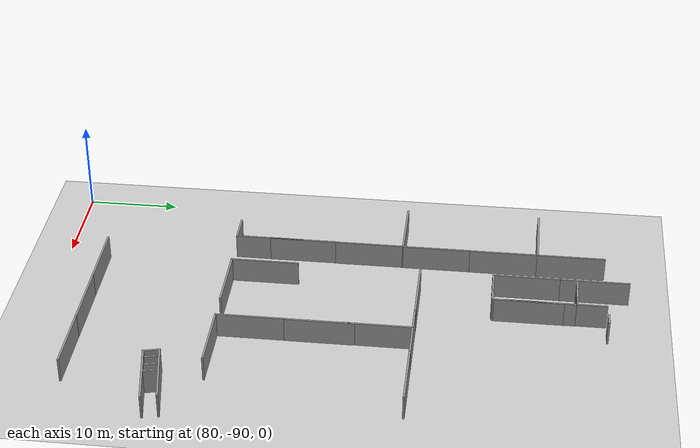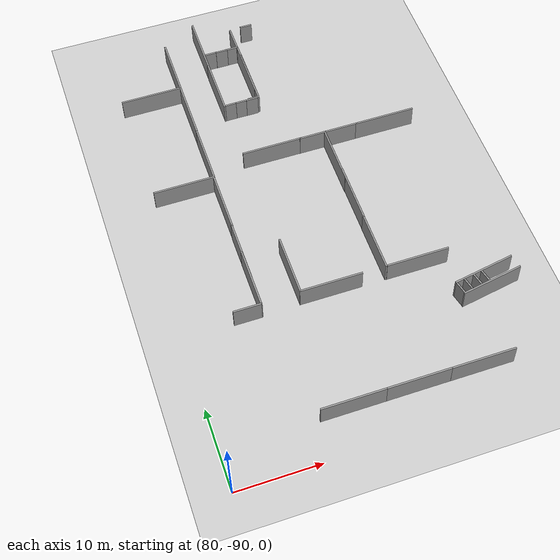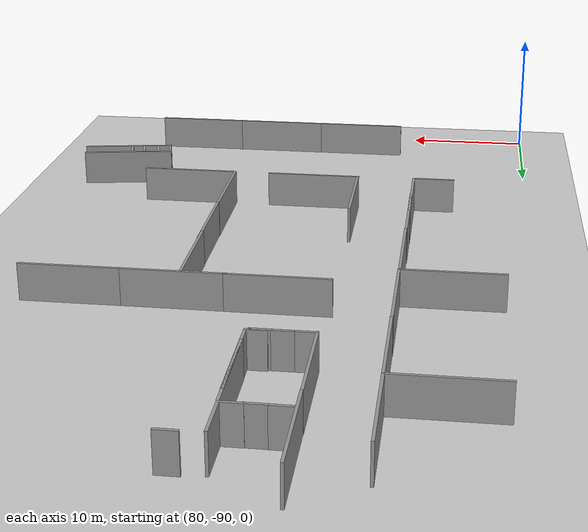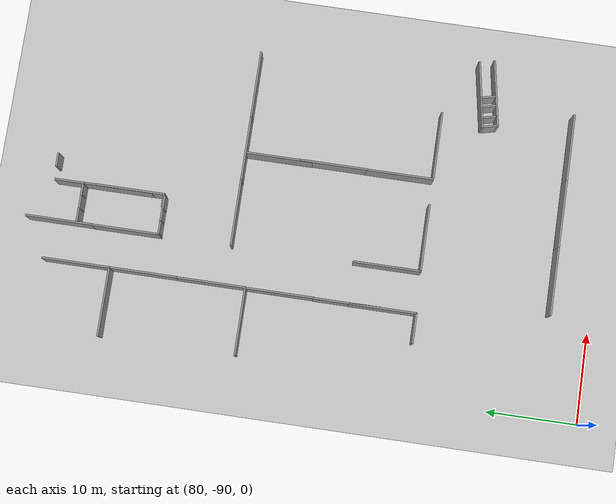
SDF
<sdf version="1.7">
 <world name="default">
  <model name="ground_plane">
   <static>1</static>
   <link name="link">
    <collision name="collision">
     <geometry><plane><normal>0 0 1</normal><size>100 100</size></plane></geometry>
     <surface>
      <contact><collide_bitmask>65535</collide_bitmask></contact>
      <friction><ode><mu>100</mu><mu2>50</mu2></ode></friction>
     </surface>
    </collision>
    <visual name="visual">
     <cast_shadows>0</cast_shadows>
     <geometry><plane><normal>0 0 1</normal><size>100 100</size></plane></geometry>
     <material>
      <script><uri>file://media/materials/scripts/gazebo.material</uri><name>Gazebo/Grey</name></script>
     </material>
    </visual>
   </link>
  </model>
  <model name="grey_wall_clone_1_clone_2_clone_clone_clone_clone_clone_clone_clone_clone_clone_3_clone_0_clone_1_clone_clone_0">
   <static>1</static>
   <link name="link">
    <pose>0 0 1.4 0 -0 0</pose>
    <collision name="collision"><geometry><box><size>7.5 0.2 2.8</size></box></geometry></collision>
    <visual name="visual">
     <cast_shadows>0</cast_shadows>
     <geometry><box><size>7.5 0.2 2.8</size></box></geometry>
     <material>
      <script>
       <uri>model://grey_wall/materials/scripts</uri>
       <uri>model://grey_wall/materials/textures</uri>
       <name>vrc/grey_wall</name>
      </script>
     </material>
    </visual>
   </link>
   <pose>85.6353 -37.3025 0 0 -0 0</pose>
  </model>
  <model name="grey_wall_clone_2_clone_clone_clone_1_clone_clone_0_clone_1_clone_clone_clone_1_clone_1_clone_clone">
   <static>1</static>
   <link name="link">
    <pose>0 0 1.4 0 -0 0</pose>
    <collision name="collision"><geometry><box><size>7.5 0.2 2.8</size></box></geometry></collision>
    <visual name="visual">
     <cast_shadows>0</cast_shadows>
     <geometry><box><size>7.5 0.2 2.8</size></box></geometry>
     <material>
      <script>
       <uri>model://grey_wall/materials/scripts</uri>
       <uri>model://grey_wall/materials/textures</uri>
       <name>vrc/grey_wall</name>
      </script>
     </material>
    </visual>
   </link>
   <pose>89.4328 -33.6148 0 0 0 -1.5708</pose>
  </model>
  <model name="grey_wall_clone_2_clone_clone_clone_1_clone_clone_0_clone_1_clone_clone_clone_1_clone_1_clone_clone_clone">
   <static>1</static>
   <link name="link">
    <pose>0 0 1.4 0 -0 0</pose>
    <collision name="collision"><geometry><box><size>7.5 0.2 2.8</size></box></geometry></collision>
    <visual name="visual">
     <cast_shadows>0</cast_shadows>
     <geometry><box><size>7.5 0.2 2.8</size></box></geometry>
     <material>
      <script>
       <uri>model://grey_wall/materials/scripts</uri>
       <uri>model://grey_wall/materials/textures</uri>
       <name>vrc/grey_wall</name>
      </script>
     </material>
    </visual>
   </link>
   <pose>89.4286 -41.0462 0 0 0 -1.5708</pose>
  </model>
  <model name="grey_wall_clone_2_clone_clone_clone_1_clone_clone_0_clone_1_clone_clone_clone_1_clone_1_clone_clone_clone_0">
   <static>1</static>
   <link name="link">
    <pose>0 0 1.4 0 -0 0</pose>
    <collision name="collision"><geometry><box><size>7.5 0.2 2.8</size></box></geometry></collision>
    <visual name="visual">
     <cast_shadows>0</cast_shadows>
     <geometry><box><size>7.5 0.2 2.8</size></box></geometry>
     <material>
      <script>
       <uri>model://grey_wall/materials/scripts</uri>
       <uri>model://grey_wall/materials/textures</uri>
       <name>vrc/grey_wall</name>
      </script>
     </material>
    </visual>
   </link>
   <pose>89.406 -48.4694 0 0 0 -1.5708</pose>
  </model>
  <model name="grey_wall_clone_1_clone_2_clone_clone_clone_clone_clone_clone_clone_clone_clone_3_clone_0_clone_1_clone_clone_0_clone_0">
   <static>1</static>
   <link name="link">
    <pose>0 0 1.4 0 -0 0</pose>
    <collision name="collision"><geometry><box><size>7.5 0.2 2.8</size></box></geometry></collision>
    <visual name="visual">
     <cast_shadows>0</cast_shadows>
     <geometry><box><size>7.5 0.2 2.8</size></box></geometry>
     <material>
      <script>
       <uri>model://grey_wall/materials/scripts</uri>
       <uri>model://grey_wall/materials/textures</uri>
       <name>vrc/grey_wall</name>
      </script>
     </material>
    </visual>
   </link>
   <pose>85.7338 -52.2347 0 0 -0 0</pose>
  </model>
  <model name="grey_wall_clone_2_clone_clone_clone_1_clone_clone_0_clone_1_clone_clone_clone_clone_clone_2_clone_clone">
   <static>1</static>
   <link name="link">
    <pose>0 0 1.4 0 -0 0</pose>
    <collision name="collision"><geometry><box><size>7.5 0.2 2.8</size></box></geometry></collision>
    <visual name="visual">
     <cast_shadows>0</cast_shadows>
     <geometry><box><size>7.5 0.2 2.8</size></box></geometry>
     <material>
      <script>
       <uri>model://grey_wall/materials/scripts</uri>
       <uri>model://grey_wall/materials/textures</uri>
       <name>vrc/grey_wall</name>
      </script>
     </material>
    </visual>
   </link>
   <pose>89.3617 -56.0477 0 0 0 -1.5708</pose>
  </model>
  <model name="grey_wall_clone_2_clone_clone_clone_1_clone_clone_0_clone_1_clone_clone_clone_clone_clone_2_clone_clone_3">
   <static>1</static>
   <link name="link">
    <pose>0 0 1.4 0 -0 0</pose>
    <collision name="collision"><geometry><box><size>7.5 0.2 2.8</size></box></geometry></collision>
    <visual name="visual">
     <cast_shadows>0</cast_shadows>
     <geometry><box><size>7.5 0.2 2.8</size></box></geometry>
     <material>
      <script>
       <uri>model://grey_wall/materials/scripts</uri>
       <uri>model://grey_wall/materials/textures</uri>
       <name>vrc/grey_wall</name>
      </script>
     </material>
    </visual>
   </link>
   <pose>89.3232 -63.4105 0 0 0 -1.5708</pose>
  </model>
  <model name="grey_wall_clone_2_clone_clone_clone_1_clone_clone_0_clone_1_clone_clone_clone_clone_clone_2_clone_clone_4">
   <static>1</static>
   <link name="link">
    <pose>0 0 1.4 0 -0 0</pose>
    <collision name="collision"><geometry><box><size>7.5 0.2 2.8</size></box></geometry></collision>
    <visual name="visual">
     <cast_shadows>0</cast_shadows>
     <geometry><box><size>7.5 0.2 2.8</size></box></geometry>
     <material>
      <script>
       <uri>model://grey_wall/materials/scripts</uri>
       <uri>model://grey_wall/materials/textures</uri>
       <name>vrc/grey_wall</name>
      </script>
     </material>
    </visual>
   </link>
   <pose>89.3032 -67.2949 0 0 0 -1.5708</pose>
  </model>
  <model name="fixed_half_clone_5_clone_1_clone_clone">
   <link name="link">
    <pose>0 0 1.4 0 -0 0</pose>
    <inertial>
     <mass>1</mass>
     <inertia><ixx>1</ixx><ixy>0</ixy><ixz>0</ixz><iyy>1</iyy><iyz>0</iyz><izz>1</izz></inertia>
    </inertial>
    <visual name="visual">
     <cast_shadows>0</cast_shadows>
     <geometry><box><size>3.3 0.2 2.8</size></box></geometry>
     <material>
      <script>
       <uri>model://grey_wall/materials/scripts</uri>
       <uri>model://grey_wall/materials/textures</uri>
       <name>vrc/grey_wall</name>
      </script>
      <shader type="pixel"><normal_map>__default__</normal_map></shader>
      <ambient>1 1 1 1</ambient>
      <diffuse>1 1 1 1</diffuse>
      <specular>0 0 0 1</specular>
      <emissive>0 0 0 1</emissive>
     </material>
    </visual>
    <collision name="collision">
     <geometry><box><size>3.3 0.2 2.8</size></box></geometry>
     <surface>
      <friction>
       <ode><mu>1</mu><mu2>1</mu2><fdir1>0 0 0</fdir1><slip1>0</slip1><slip2>0</slip2></ode>
       <torsional>
        <coefficient>1</coefficient>
        <patch_radius>0</patch_radius>
        <surface_radius>0</surface_radius>
        <use_patch_radius>1</use_patch_radius>
        <ode><slip>0</slip></ode>
       </torsional>
      </friction>
      <bounce><restitution_coefficient>0</restitution_coefficient><threshold>1e+06</threshold></bounce>
      <contact>
       <collide_without_contact>0</collide_without_contact>
       <collide_without_contact_bitmask>1</collide_without_contact_bitmask>
       <collide_bitmask>1</collide_bitmask>
       <ode>
        <soft_cfm>0</soft_cfm>
        <soft_erp>0.2</soft_erp>
        <kp>1e+13</kp>
        <kd>1</kd>
        <max_vel>0.01</max_vel>
        <min_depth>0</min_depth>
       </ode>
       <bullet>
        <split_impulse>1</split_impulse>
        <split_impulse_penetration_threshold>-0.01</split_impulse_penetration_threshold>
        <soft_cfm>0</soft_cfm>
        <soft_erp>0.2</soft_erp>
        <kp>1e+13</kp>
        <kd>1</kd>
       </bullet>
      </contact>
     </surface>
    </collision>
   </link>
   <static>1</static>
   <pose>87.6669 -70.9603 0 0 -0 3.14159</pose>
  </model>
  <model name="grey_wall_clone_2_clone_clone_clone_1_clone_clone_0_clone_1_clone_clone_clone_1_clone_0_clone_2_clone_1">
   <static>1</static>
   <link name="link">
    <pose>0 0 1.4 0 -0 0</pose>
    <collision name="collision"><geometry><box><size>7.5 0.2 2.8</size></box></geometry></collision>
    <visual name="visual">
     <cast_shadows>0</cast_shadows>
     <geometry><box><size>7.5 0.2 2.8</size></box></geometry>
     <material>
      <script>
       <uri>model://grey_wall/materials/scripts</uri>
       <uri>model://grey_wall/materials/textures</uri>
       <name>vrc/grey_wall</name>
      </script>
     </material>
    </visual>
   </link>
   <pose>93.8014 -31.0444 0 0 0 -1.5708</pose>
  </model>
  <model name="grey_wall_clone_2_clone_clone_clone_1_clone_clone_0_clone_1_clone_clone_clone_1_clone_0_clone_2_clone_2">
   <static>1</static>
   <link name="link">
    <pose>0 0 1.4 0 -0 0</pose>
    <collision name="collision"><geometry><box><size>7.5 0.2 2.8</size></box></geometry></collision>
    <visual name="visual">
     <cast_shadows>0</cast_shadows>
     <geometry><box><size>7.5 0.2 2.8</size></box></geometry>
     <material>
      <script>
       <uri>model://grey_wall/materials/scripts</uri>
       <uri>model://grey_wall/materials/textures</uri>
       <name>vrc/grey_wall</name>
      </script>
     </material>
    </visual>
   </link>
   <pose>93.78 -38.3773 0 0 0 -1.5708</pose>
  </model>
  <model name="half_wall_clone_0_clone_clone_clone_9_clone_1_clone_clone_1">
   <link name="link">
    <pose>0 0 1.4 0 -0 0</pose>
    <inertial>
     <mass>1</mass>
     <inertia><ixx>1</ixx><ixy>0</ixy><ixz>0</ixz><iyy>1</iyy><iyz>0</iyz><izz>1</izz></inertia>
    </inertial>
    <visual name="visual">
     <cast_shadows>0</cast_shadows>
     <geometry><box><size>1.5 0.2 2.8</size></box></geometry>
     <material>
      <script>
       <uri>model://grey_wall/materials/scripts</uri>
       <uri>model://grey_wall/materials/textures</uri>
       <name>vrc/grey_wall</name>
      </script>
      <shader type="pixel"><normal_map>__default__</normal_map></shader>
      <ambient>1 1 1 1</ambient>
      <diffuse>1 1 1 1</diffuse>
      <specular>0 0 0 1</specular>
      <emissive>0 0 0 1</emissive>
     </material>
    </visual>
    <collision name="collision">
     <geometry><box><size>1.5 0.2 2.8</size></box></geometry>
     <surface>
      <friction>
       <ode><mu>1</mu><mu2>1</mu2><fdir1>0 0 0</fdir1><slip1>0</slip1><slip2>0</slip2></ode>
       <torsional>
        <coefficient>1</coefficient>
        <patch_radius>0</patch_radius>
        <surface_radius>0</surface_radius>
        <use_patch_radius>1</use_patch_radius>
        <ode><slip>0</slip></ode>
       </torsional>
      </friction>
      <bounce><restitution_coefficient>0</restitution_coefficient><threshold>1e+06</threshold></bounce>
      <contact>
       <collide_without_contact>0</collide_without_contact>
       <collide_without_contact_bitmask>1</collide_without_contact_bitmask>
       <collide_bitmask>1</collide_bitmask>
       <ode>
        <soft_cfm>0</soft_cfm>
        <soft_erp>0.2</soft_erp>
        <kp>1e+13</kp>
        <kd>1</kd>
        <max_vel>0.01</max_vel>
        <min_depth>0</min_depth>
       </ode>
       <bullet>
        <split_impulse>1</split_impulse>
        <split_impulse_penetration_threshold>-0.01</split_impulse_penetration_threshold>
        <soft_cfm>0</soft_cfm>
        <soft_erp>0.2</soft_erp>
        <kp>1e+13</kp>
        <kd>1</kd>
       </bullet>
      </contact>
     </surface>
    </collision>
   </link>
   <static>1</static>
   <pose>100.371 -29.6779 0 0 -0 3.14159</pose>
  </model>
  <model name="fixed_half_clone_16_clone_clone_clone_0_clone_4_clone_1_clone">
   <link name="link">
    <pose>0 0 1.4 0 -0 0</pose>
    <inertial>
     <mass>1</mass>
     <inertia><ixx>1</ixx><ixy>0</ixy><ixz>0</ixz><iyy>1</iyy><iyz>0</iyz><izz>1</izz></inertia>
    </inertial>
    <visual name="visual">
     <cast_shadows>0</cast_shadows>
     <geometry><box><size>3.3 0.2 2.8</size></box></geometry>
     <material>
      <script>
       <uri>model://grey_wall/materials/scripts</uri>
       <uri>model://grey_wall/materials/textures</uri>
       <name>vrc/grey_wall</name>
      </script>
      <shader type="pixel"><normal_map>__default__</normal_map></shader>
      <ambient>1 1 1 1</ambient>
      <diffuse>1 1 1 1</diffuse>
      <specular>0 0 0 1</specular>
      <emissive>0 0 0 1</emissive>
     </material>
    </visual>
    <collision name="collision">
     <geometry><box><size>3.3 0.2 2.8</size></box></geometry>
     <surface>
      <friction>
       <ode><mu>1</mu><mu2>1</mu2><fdir1>0 0 0</fdir1><slip1>0</slip1><slip2>0</slip2></ode>
       <torsional>
        <coefficient>1</coefficient>
        <patch_radius>0</patch_radius>
        <surface_radius>0</surface_radius>
        <use_patch_radius>1</use_patch_radius>
        <ode><slip>0</slip></ode>
       </torsional>
      </friction>
      <bounce><restitution_coefficient>0</restitution_coefficient><threshold>1e+06</threshold></bounce>
      <contact>
       <collide_without_contact>0</collide_without_contact>
       <collide_without_contact_bitmask>1</collide_without_contact_bitmask>
       <collide_bitmask>1</collide_bitmask>
       <ode>
        <soft_cfm>0</soft_cfm>
        <soft_erp>0.2</soft_erp>
        <kp>1e+13</kp>
        <kd>1</kd>
        <max_vel>0.01</max_vel>
        <min_depth>0</min_depth>
       </ode>
       <bullet>
        <split_impulse>1</split_impulse>
        <split_impulse_penetration_threshold>-0.01</split_impulse_penetration_threshold>
        <soft_cfm>0</soft_cfm>
        <soft_erp>0.2</soft_erp>
        <kp>1e+13</kp>
        <kd>1</kd>
       </bullet>
      </contact>
     </surface>
    </collision>
   </link>
   <static>1</static>
   <pose>98.2039 -31.4104 0 0 0 -1.5708</pose>
  </model>
  <model name="half_wall_clone_0_clone_clone_clone_9_clone_1_clone_clone_2_clone">
   <link name="link">
    <pose>0 0 1.4 0 -0 0</pose>
    <inertial>
     <mass>1</mass>
     <inertia><ixx>1</ixx><ixy>0</ixy><ixz>0</ixz><iyy>1</iyy><iyz>0</iyz><izz>1</izz></inertia>
    </inertial>
    <visual name="visual">
     <cast_shadows>0</cast_shadows>
     <geometry><box><size>1.5 0.2 2.8</size></box></geometry>
     <material>
      <script>
       <uri>model://grey_wall/materials/scripts</uri>
       <uri>model://grey_wall/materials/textures</uri>
       <name>vrc/grey_wall</name>
      </script>
      <shader type="pixel"><normal_map>__default__</normal_map></shader>
      <ambient>1 1 1 1</ambient>
      <diffuse>1 1 1 1</diffuse>
      <specular>0 0 0 1</specular>
      <emissive>0 0 0 1</emissive>
     </material>
    </visual>
    <collision name="collision">
     <geometry><box><size>1.5 0.2 2.8</size></box></geometry>
     <surface>
      <friction>
       <ode><mu>1</mu><mu2>1</mu2><fdir1>0 0 0</fdir1><slip1>0</slip1><slip2>0</slip2></ode>
       <torsional>
        <coefficient>1</coefficient>
        <patch_radius>0</patch_radius>
        <surface_radius>0</surface_radius>
        <use_patch_radius>1</use_patch_radius>
        <ode><slip>0</slip></ode>
       </torsional>
      </friction>
      <bounce><restitution_coefficient>0</restitution_coefficient><threshold>1e+06</threshold></bounce>
      <contact>
       <collide_without_contact>0</collide_without_contact>
       <collide_without_contact_bitmask>1</collide_without_contact_bitmask>
       <collide_bitmask>1</collide_bitmask>
       <ode>
        <soft_cfm>0</soft_cfm>
        <soft_erp>0.2</soft_erp>
        <kp>1e+13</kp>
        <kd>1</kd>
        <max_vel>0.01</max_vel>
        <min_depth>0</min_depth>
       </ode>
       <bullet>
        <split_impulse>1</split_impulse>
        <split_impulse_penetration_threshold>-0.01</split_impulse_penetration_threshold>
        <soft_cfm>0</soft_cfm>
        <soft_erp>0.2</soft_erp>
        <kp>1e+13</kp>
        <kd>1</kd>
       </bullet>
      </contact>
     </surface>
    </collision>
   </link>
   <static>1</static>
   <pose>97.4826 -32.9362 0 0 -0 3.14159</pose>
  </model>
  <model name="half_wall_clone_0_clone_clone_clone_9_clone_1_clone_clone_2_clone_0">
   <link name="link">
    <pose>0 0 1.4 0 -0 0</pose>
    <inertial>
     <mass>1</mass>
     <inertia><ixx>1</ixx><ixy>0</ixy><ixz>0</ixz><iyy>1</iyy><iyz>0</iyz><izz>1</izz></inertia>
    </inertial>
    <visual name="visual">
     <cast_shadows>0</cast_shadows>
     <geometry><box><size>1.5 0.2 2.8</size></box></geometry>
     <material>
      <script>
       <uri>model://grey_wall/materials/scripts</uri>
       <uri>model://grey_wall/materials/textures</uri>
       <name>vrc/grey_wall</name>
      </script>
      <shader type="pixel"><normal_map>__default__</normal_map></shader>
      <ambient>1 1 1 1</ambient>
      <diffuse>1 1 1 1</diffuse>
      <specular>0 0 0 1</specular>
      <emissive>0 0 0 1</emissive>
     </material>
    </visual>
    <collision name="collision">
     <geometry><box><size>1.5 0.2 2.8</size></box></geometry>
     <surface>
      <friction>
       <ode><mu>1</mu><mu2>1</mu2><fdir1>0 0 0</fdir1><slip1>0</slip1><slip2>0</slip2></ode>
       <torsional>
        <coefficient>1</coefficient>
        <patch_radius>0</patch_radius>
        <surface_radius>0</surface_radius>
        <use_patch_radius>1</use_patch_radius>
        <ode><slip>0</slip></ode>
       </torsional>
      </friction>
      <bounce><restitution_coefficient>0</restitution_coefficient><threshold>1e+06</threshold></bounce>
      <contact>
       <collide_without_contact>0</collide_without_contact>
       <collide_without_contact_bitmask>1</collide_without_contact_bitmask>
       <collide_bitmask>1</collide_bitmask>
       <ode>
        <soft_cfm>0</soft_cfm>
        <soft_erp>0.2</soft_erp>
        <kp>1e+13</kp>
        <kd>1</kd>
        <max_vel>0.01</max_vel>
        <min_depth>0</min_depth>
       </ode>
       <bullet>
        <split_impulse>1</split_impulse>
        <split_impulse_penetration_threshold>-0.01</split_impulse_penetration_threshold>
        <soft_cfm>0</soft_cfm>
        <soft_erp>0.2</soft_erp>
        <kp>1e+13</kp>
        <kd>1</kd>
       </bullet>
      </contact>
     </surface>
    </collision>
   </link>
   <static>1</static>
   <pose>96.1071 -32.9514 0 0 -0 3.14159</pose>
  </model>
  <model name="half_wall_clone_0_clone_clone_clone_9_clone_1_clone_clone_2_clone_1">
   <link name="link">
    <pose>0 0 1.4 0 -0 0</pose>
    <inertial>
     <mass>1</mass>
     <inertia><ixx>1</ixx><ixy>0</ixy><ixz>0</ixz><iyy>1</iyy><iyz>0</iyz><izz>1</izz></inertia>
    </inertial>
    <visual name="visual">
     <cast_shadows>0</cast_shadows>
     <geometry><box><size>1.5 0.2 2.8</size></box></geometry>
     <material>
      <script>
       <uri>model://grey_wall/materials/scripts</uri>
       <uri>model://grey_wall/materials/textures</uri>
       <name>vrc/grey_wall</name>
      </script>
      <shader type="pixel"><normal_map>__default__</normal_map></shader>
      <ambient>1 1 1 1</ambient>
      <diffuse>1 1 1 1</diffuse>
      <specular>0 0 0 1</specular>
      <emissive>0 0 0 1</emissive>
     </material>
    </visual>
    <collision name="collision">
     <geometry><box><size>1.5 0.2 2.8</size></box></geometry>
     <surface>
      <friction>
       <ode><mu>1</mu><mu2>1</mu2><fdir1>0 0 0</fdir1><slip1>0</slip1><slip2>0</slip2></ode>
       <torsional>
        <coefficient>1</coefficient>
        <patch_radius>0</patch_radius>
        <surface_radius>0</surface_radius>
        <use_patch_radius>1</use_patch_radius>
        <ode><slip>0</slip></ode>
       </torsional>
      </friction>
      <bounce><restitution_coefficient>0</restitution_coefficient><threshold>1e+06</threshold></bounce>
      <contact>
       <collide_without_contact>0</collide_without_contact>
       <collide_without_contact_bitmask>1</collide_without_contact_bitmask>
       <collide_bitmask>1</collide_bitmask>
       <ode>
        <soft_cfm>0</soft_cfm>
        <soft_erp>0.2</soft_erp>
        <kp>1e+13</kp>
        <kd>1</kd>
        <max_vel>0.01</max_vel>
        <min_depth>0</min_depth>
       </ode>
       <bullet>
        <split_impulse>1</split_impulse>
        <split_impulse_penetration_threshold>-0.01</split_impulse_penetration_threshold>
        <soft_cfm>0</soft_cfm>
        <soft_erp>0.2</soft_erp>
        <kp>1e+13</kp>
        <kd>1</kd>
       </bullet>
      </contact>
     </surface>
    </collision>
   </link>
   <static>1</static>
   <pose>94.6629 -32.9375 0 0 -0 3.14159</pose>
  </model>
  <model name="grey_wall_clone_2_clone_clone_clone_1_clone_clone_0_clone_1_clone_clone_clone_1_clone_0_clone_2_clone_2_clone">
   <static>1</static>
   <link name="link">
    <pose>0 0 1.4 0 -0 0</pose>
    <collision name="collision"><geometry><box><size>7.5 0.2 2.8</size></box></geometry></collision>
    <visual name="visual">
     <cast_shadows>0</cast_shadows>
     <geometry><box><size>7.5 0.2 2.8</size></box></geometry>
     <material>
      <script>
       <uri>model://grey_wall/materials/scripts</uri>
       <uri>model://grey_wall/materials/textures</uri>
       <name>vrc/grey_wall</name>
      </script>
     </material>
    </visual>
   </link>
   <pose>98.2267 -36.8045 0 0 0 -1.5708</pose>
  </model>
  <model name="grey_wall_clone_2_clone_clone_clone_1_clone_clone_0_clone_1_clone_clone_clone_1_clone_0_clone_2_clone_2_clone_0">
   <static>1</static>
   <link name="link">
    <pose>0 0 1.4 0 -0 0</pose>
    <collision name="collision"><geometry><box><size>7.5 0.2 2.8</size></box></geometry></collision>
    <visual name="visual">
     <cast_shadows>0</cast_shadows>
     <geometry><box><size>7.5 0.2 2.8</size></box></geometry>
     <material>
      <script>
       <uri>model://grey_wall/materials/scripts</uri>
       <uri>model://grey_wall/materials/textures</uri>
       <name>vrc/grey_wall</name>
      </script>
     </material>
    </visual>
   </link>
   <pose>98.2462 -38.084 0 0 0 -1.5708</pose>
  </model>
  <model name="half_wall_clone_0_clone_clone_clone_9_clone_1_clone_clone_2_clone_1_clone">
   <link name="link">
    <pose>0 0 1.4 0 -0 0</pose>
    <inertial>
     <mass>1</mass>
     <inertia><ixx>1</ixx><ixy>0</ixy><ixz>0</ixz><iyy>1</iyy><iyz>0</iyz><izz>1</izz></inertia>
    </inertial>
    <visual name="visual">
     <cast_shadows>0</cast_shadows>
     <geometry><box><size>1.5 0.2 2.8</size></box></geometry>
     <material>
      <script>
       <uri>model://grey_wall/materials/scripts</uri>
       <uri>model://grey_wall/materials/textures</uri>
       <name>vrc/grey_wall</name>
      </script>
      <shader type="pixel"><normal_map>__default__</normal_map></shader>
      <ambient>1 1 1 1</ambient>
      <diffuse>1 1 1 1</diffuse>
      <specular>0 0 0 1</specular>
      <emissive>0 0 0 1</emissive>
     </material>
    </visual>
    <collision name="collision">
     <geometry><box><size>1.5 0.2 2.8</size></box></geometry>
     <surface>
      <friction>
       <ode><mu>1</mu><mu2>1</mu2><fdir1>0 0 0</fdir1><slip1>0</slip1><slip2>0</slip2></ode>
       <torsional>
        <coefficient>1</coefficient>
        <patch_radius>0</patch_radius>
        <surface_radius>0</surface_radius>
        <use_patch_radius>1</use_patch_radius>
        <ode><slip>0</slip></ode>
       </torsional>
      </friction>
      <bounce><restitution_coefficient>0</restitution_coefficient><threshold>1e+06</threshold></bounce>
      <contact>
       <collide_without_contact>0</collide_without_contact>
       <collide_without_contact_bitmask>1</collide_without_contact_bitmask>
       <collide_bitmask>1</collide_bitmask>
       <ode>
        <soft_cfm>0</soft_cfm>
        <soft_erp>0.2</soft_erp>
        <kp>1e+13</kp>
        <kd>1</kd>
        <max_vel>0.01</max_vel>
        <min_depth>0</min_depth>
       </ode>
       <bullet>
        <split_impulse>1</split_impulse>
        <split_impulse_penetration_threshold>-0.01</split_impulse_penetration_threshold>
        <soft_cfm>0</soft_cfm>
        <soft_erp>0.2</soft_erp>
        <kp>1e+13</kp>
        <kd>1</kd>
       </bullet>
      </contact>
     </surface>
    </collision>
   </link>
   <static>1</static>
   <pose>94.5148 -41.9959 0 0 -0 3.14159</pose>
  </model>
  <model name="half_wall_clone_0_clone_clone_clone_9_clone_1_clone_clone_2_clone_1_clone_0">
   <link name="link">
    <pose>0 0 1.4 0 -0 0</pose>
    <inertial>
     <mass>1</mass>
     <inertia><ixx>1</ixx><ixy>0</ixy><ixz>0</ixz><iyy>1</iyy><iyz>0</iyz><izz>1</izz></inertia>
    </inertial>
    <visual name="visual">
     <cast_shadows>0</cast_shadows>
     <geometry><box><size>1.5 0.2 2.8</size></box></geometry>
     <material>
      <script>
       <uri>model://grey_wall/materials/scripts</uri>
       <uri>model://grey_wall/materials/textures</uri>
       <name>vrc/grey_wall</name>
      </script>
      <shader type="pixel"><normal_map>__default__</normal_map></shader>
      <ambient>1 1 1 1</ambient>
      <diffuse>1 1 1 1</diffuse>
      <specular>0 0 0 1</specular>
      <emissive>0 0 0 1</emissive>
     </material>
    </visual>
    <collision name="collision">
     <geometry><box><size>1.5 0.2 2.8</size></box></geometry>
     <surface>
      <friction>
       <ode><mu>1</mu><mu2>1</mu2><fdir1>0 0 0</fdir1><slip1>0</slip1><slip2>0</slip2></ode>
       <torsional>
        <coefficient>1</coefficient>
        <patch_radius>0</patch_radius>
        <surface_radius>0</surface_radius>
        <use_patch_radius>1</use_patch_radius>
        <ode><slip>0</slip></ode>
       </torsional>
      </friction>
      <bounce><restitution_coefficient>0</restitution_coefficient><threshold>1e+06</threshold></bounce>
      <contact>
       <collide_without_contact>0</collide_without_contact>
       <collide_without_contact_bitmask>1</collide_without_contact_bitmask>
       <collide_bitmask>1</collide_bitmask>
       <ode>
        <soft_cfm>0</soft_cfm>
        <soft_erp>0.2</soft_erp>
        <kp>1e+13</kp>
        <kd>1</kd>
        <max_vel>0.01</max_vel>
        <min_depth>0</min_depth>
       </ode>
       <bullet>
        <split_impulse>1</split_impulse>
        <split_impulse_penetration_threshold>-0.01</split_impulse_penetration_threshold>
        <soft_cfm>0</soft_cfm>
        <soft_erp>0.2</soft_erp>
        <kp>1e+13</kp>
        <kd>1</kd>
       </bullet>
      </contact>
     </surface>
    </collision>
   </link>
   <static>1</static>
   <pose>95.9279 -41.9907 0 0 -0 3.14159</pose>
  </model>
  <model name="half_wall_clone_0_clone_clone_clone_9_clone_1_clone_clone_2_clone_1_clone_1">
   <link name="link">
    <pose>0 0 1.4 0 -0 0</pose>
    <inertial>
     <mass>1</mass>
     <inertia><ixx>1</ixx><ixy>0</ixy><ixz>0</ixz><iyy>1</iyy><iyz>0</iyz><izz>1</izz></inertia>
    </inertial>
    <visual name="visual">
     <cast_shadows>0</cast_shadows>
     <geometry><box><size>1.5 0.2 2.8</size></box></geometry>
     <material>
      <script>
       <uri>model://grey_wall/materials/scripts</uri>
       <uri>model://grey_wall/materials/textures</uri>
       <name>vrc/grey_wall</name>
      </script>
      <shader type="pixel"><normal_map>__default__</normal_map></shader>
      <ambient>1 1 1 1</ambient>
      <diffuse>1 1 1 1</diffuse>
      <specular>0 0 0 1</specular>
      <emissive>0 0 0 1</emissive>
     </material>
    </visual>
    <collision name="collision">
     <geometry><box><size>1.5 0.2 2.8</size></box></geometry>
     <surface>
      <friction>
       <ode><mu>1</mu><mu2>1</mu2><fdir1>0 0 0</fdir1><slip1>0</slip1><slip2>0</slip2></ode>
       <torsional>
        <coefficient>1</coefficient>
        <patch_radius>0</patch_radius>
        <surface_radius>0</surface_radius>
        <use_patch_radius>1</use_patch_radius>
        <ode><slip>0</slip></ode>
       </torsional>
      </friction>
      <bounce><restitution_coefficient>0</restitution_coefficient><threshold>1e+06</threshold></bounce>
      <contact>
       <collide_without_contact>0</collide_without_contact>
       <collide_without_contact_bitmask>1</collide_without_contact_bitmask>
       <collide_bitmask>1</collide_bitmask>
       <ode>
        <soft_cfm>0</soft_cfm>
        <soft_erp>0.2</soft_erp>
        <kp>1e+13</kp>
        <kd>1</kd>
        <max_vel>0.01</max_vel>
        <min_depth>0</min_depth>
       </ode>
       <bullet>
        <split_impulse>1</split_impulse>
        <split_impulse_penetration_threshold>-0.01</split_impulse_penetration_threshold>
        <soft_cfm>0</soft_cfm>
        <soft_erp>0.2</soft_erp>
        <kp>1e+13</kp>
        <kd>1</kd>
       </bullet>
      </contact>
     </surface>
    </collision>
   </link>
   <static>1</static>
   <pose>97.3532 -42.0028 0 0 -0 3.14159</pose>
  </model>
  <model name="half_wall_clone_0_clone_clone_clone_9_clone_1_clone_clone_2_clone_1_clone_2">
   <link name="link">
    <pose>0 0 1.4 0 -0 0</pose>
    <inertial>
     <mass>1</mass>
     <inertia><ixx>1</ixx><ixy>0</ixy><ixz>0</ixz><iyy>1</iyy><iyz>0</iyz><izz>1</izz></inertia>
    </inertial>
    <visual name="visual">
     <cast_shadows>0</cast_shadows>
     <geometry><box><size>1.5 0.2 2.8</size></box></geometry>
     <material>
      <script>
       <uri>model://grey_wall/materials/scripts</uri>
       <uri>model://grey_wall/materials/textures</uri>
       <name>vrc/grey_wall</name>
      </script>
      <shader type="pixel"><normal_map>__default__</normal_map></shader>
      <ambient>1 1 1 1</ambient>
      <diffuse>1 1 1 1</diffuse>
      <specular>0 0 0 1</specular>
      <emissive>0 0 0 1</emissive>
     </material>
    </visual>
    <collision name="collision">
     <geometry><box><size>1.5 0.2 2.8</size></box></geometry>
     <surface>
      <friction>
       <ode><mu>1</mu><mu2>1</mu2><fdir1>0 0 0</fdir1><slip1>0</slip1><slip2>0</slip2></ode>
       <torsional>
        <coefficient>1</coefficient>
        <patch_radius>0</patch_radius>
        <surface_radius>0</surface_radius>
        <use_patch_radius>1</use_patch_radius>
        <ode><slip>0</slip></ode>
       </torsional>
      </friction>
      <bounce><restitution_coefficient>0</restitution_coefficient><threshold>1e+06</threshold></bounce>
      <contact>
       <collide_without_contact>0</collide_without_contact>
       <collide_without_contact_bitmask>1</collide_without_contact_bitmask>
       <collide_bitmask>1</collide_bitmask>
       <ode>
        <soft_cfm>0</soft_cfm>
        <soft_erp>0.2</soft_erp>
        <kp>1e+13</kp>
        <kd>1</kd>
        <max_vel>0.01</max_vel>
        <min_depth>0</min_depth>
       </ode>
       <bullet>
        <split_impulse>1</split_impulse>
        <split_impulse_penetration_threshold>-0.01</split_impulse_penetration_threshold>
        <soft_cfm>0</soft_cfm>
        <soft_erp>0.2</soft_erp>
        <kp>1e+13</kp>
        <kd>1</kd>
       </bullet>
      </contact>
     </surface>
    </collision>
   </link>
   <static>1</static>
   <pose>97.5875 -41.8852 0 0 -0 3.14159</pose>
  </model>
  <model name="grey_wall_clone_1_clone_2_clone_clone_clone_clone_clone_clone_clone_clone_clone_3_clone_0_clone_1_clone_clone_0_clone_0_clone">
   <static>1</static>
   <link name="link">
    <pose>0 0 1.4 0 -0 0</pose>
    <collision name="collision"><geometry><box><size>7.5 0.2 2.8</size></box></geometry></collision>
    <visual name="visual">
     <cast_shadows>0</cast_shadows>
     <geometry><box><size>7.5 0.2 2.8</size></box></geometry>
     <material>
      <script>
       <uri>model://grey_wall/materials/scripts</uri>
       <uri>model://grey_wall/materials/textures</uri>
       <name>vrc/grey_wall</name>
      </script>
     </material>
    </visual>
   </link>
   <pose>97.4462 -49.9928 0 0 -0 0</pose>
  </model>
  <model name="grey_wall_clone_1_clone_2_clone_clone_clone_clone_clone_clone_clone_clone_clone_3_clone_0_clone_1_clone_clone_0_clone_0_clone_0">
   <static>1</static>
   <link name="link">
    <pose>0 0 1.4 0 -0 0</pose>
    <collision name="collision"><geometry><box><size>7.5 0.2 2.8</size></box></geometry></collision>
    <visual name="visual">
     <cast_shadows>0</cast_shadows>
     <geometry><box><size>7.5 0.2 2.8</size></box></geometry>
     <material>
      <script>
       <uri>model://grey_wall/materials/scripts</uri>
       <uri>model://grey_wall/materials/textures</uri>
       <name>vrc/grey_wall</name>
      </script>
     </material>
    </visual>
   </link>
   <pose>97.5776 -70.804 0 0 -0 0</pose>
  </model>
  <model name="grey_wall_clone_1_clone_2_clone_clone_clone_clone_clone_clone_clone_clone_clone_3_clone_0_clone_1_clone_clone_0_clone_0_clone_1">
   <static>1</static>
   <link name="link">
    <pose>0 0 1.4 0 -0 0</pose>
    <collision name="collision"><geometry><box><size>7.5 0.2 2.8</size></box></geometry></collision>
    <visual name="visual">
     <cast_shadows>0</cast_shadows>
     <geometry><box><size>7.5 0.2 2.8</size></box></geometry>
     <material>
      <script>
       <uri>model://grey_wall/materials/scripts</uri>
       <uri>model://grey_wall/materials/textures</uri>
       <name>vrc/grey_wall</name>
      </script>
     </material>
    </visual>
   </link>
   <pose>104.672 -50.0088 0 0 -0 0</pose>
  </model>
  <model name="grey_wall_clone_2_clone_clone_clone_1_clone_clone_0_clone_1_clone_clone_clone_clone_clone_2_clone_clone_4_clone">
   <static>1</static>
   <link name="link">
    <pose>0 0 1.4 0 -0 0</pose>
    <collision name="collision"><geometry><box><size>7.5 0.2 2.8</size></box></geometry></collision>
    <visual name="visual">
     <cast_shadows>0</cast_shadows>
     <geometry><box><size>7.5 0.2 2.8</size></box></geometry>
     <material>
      <script>
       <uri>model://grey_wall/materials/scripts</uri>
       <uri>model://grey_wall/materials/textures</uri>
       <name>vrc/grey_wall</name>
      </script>
     </material>
    </visual>
   </link>
   <pose>93.9136 -67.1366 0 0 0 -1.5708</pose>
  </model>
  <model name="grey_wall_clone_2_clone_clone_clone_1_clone_clone_0_clone_1_clone_clone_clone_clone_clone_2_clone_clone_4_clone_0">
   <static>1</static>
   <link name="link">
    <pose>0 0 1.4 0 -0 0</pose>
    <collision name="collision"><geometry><box><size>7.5 0.2 2.8</size></box></geometry></collision>
    <visual name="visual">
     <cast_shadows>0</cast_shadows>
     <geometry><box><size>7.5 0.2 2.8</size></box></geometry>
     <material>
      <script>
       <uri>model://grey_wall/materials/scripts</uri>
       <uri>model://grey_wall/materials/textures</uri>
       <name>vrc/grey_wall</name>
      </script>
     </material>
    </visual>
   </link>
   <pose>104.179 -67.1336 0 0 0 -1.5708</pose>
  </model>
  <model name="grey_wall_clone_2_clone_clone_clone_1_clone_clone_0_clone_1_clone_clone_clone_clone_clone_2_clone_clone_4_clone_1">
   <static>1</static>
   <link name="link">
    <pose>0 0 1.4 0 -0 0</pose>
    <collision name="collision"><geometry><box><size>7.5 0.2 2.8</size></box></geometry></collision>
    <visual name="visual">
     <cast_shadows>0</cast_shadows>
     <geometry><box><size>7.5 0.2 2.8</size></box></geometry>
     <material>
      <script>
       <uri>model://grey_wall/materials/scripts</uri>
       <uri>model://grey_wall/materials/textures</uri>
       <name>vrc/grey_wall</name>
      </script>
     </material>
    </visual>
   </link>
   <pose>104.199 -59.8221 0 0 0 -1.5708</pose>
  </model>
  <model name="grey_wall_clone_2_clone_clone_clone_1_clone_clone_0_clone_1_clone_clone_clone_clone_clone_2_clone_clone_4_clone_2">
   <static>1</static>
   <link name="link">
    <pose>0 0 1.4 0 -0 0</pose>
    <collision name="collision"><geometry><box><size>7.5 0.2 2.8</size></box></geometry></collision>
    <visual name="visual">
     <cast_shadows>0</cast_shadows>
     <geometry><box><size>7.5 0.2 2.8</size></box></geometry>
     <material>
      <script>
       <uri>model://grey_wall/materials/scripts</uri>
       <uri>model://grey_wall/materials/textures</uri>
       <name>vrc/grey_wall</name>
      </script>
     </material>
    </visual>
   </link>
   <pose>104.166 -53.6968 0 0 0 -1.5708</pose>
  </model>
  <model name="grey_wall_clone_1_clone_2_clone_clone_clone_clone_clone_clone_clone_clone_clone_3_clone_0_clone_1_clone_clone_0_clone_0_clone_0_clone">
   <static>1</static>
   <link name="link">
    <pose>0 0 1.4 0 -0 0</pose>
    <collision name="collision"><geometry><box><size>7.5 0.2 2.8</size></box></geometry></collision>
    <visual name="visual">
     <cast_shadows>0</cast_shadows>
     <geometry><box><size>7.5 0.2 2.8</size></box></geometry>
     <material>
      <script>
       <uri>model://grey_wall/materials/scripts</uri>
       <uri>model://grey_wall/materials/textures</uri>
       <name>vrc/grey_wall</name>
      </script>
     </material>
    </visual>
   </link>
   <pose>108.028 -70.8198 0 0 -0 0</pose>
  </model>
  <model name="grey_wall_clone_1_clone_2_clone_clone_clone_clone_clone_clone_clone_clone_clone_3_clone_0_clone_1_clone_clone_0_clone_0_clone_1_clone">
   <static>1</static>
   <link name="link">
    <pose>0 0 1.4 0 -0 0</pose>
    <collision name="collision"><geometry><box><size>7.5 0.2 2.8</size></box></geometry></collision>
    <visual name="visual">
     <cast_shadows>0</cast_shadows>
     <geometry><box><size>7.5 0.2 2.8</size></box></geometry>
     <material>
      <script>
       <uri>model://grey_wall/materials/scripts</uri>
       <uri>model://grey_wall/materials/textures</uri>
       <name>vrc/grey_wall</name>
      </script>
     </material>
    </visual>
   </link>
   <pose>111.923 -50.0095 0 0 -0 0</pose>
  </model>
  <model name="grey_wall_clone_1_clone_2_clone_clone_clone_clone_clone_clone_clone_3_clone_0_clone_0_clone_5_clone_2_clone_2_clone_clone_6">
   <static>1</static>
   <link name="link">
    <pose>0 0 1.4 0 -0 0</pose>
    <collision name="collision"><geometry><box><size>7.5 0.2 2.8</size></box></geometry></collision>
    <visual name="visual">
     <cast_shadows>0</cast_shadows>
     <geometry><box><size>7.5 0.2 2.8</size></box></geometry>
     <material>
      <script>
       <uri>model://grey_wall/materials/scripts</uri>
       <uri>model://grey_wall/materials/textures</uri>
       <name>vrc/grey_wall</name>
      </script>
     </material>
    </visual>
   </link>
   <pose>109.862 -85.3222 0 0 -0 0</pose>
  </model>
  <model name="grey_wall_clone_1_clone_2_clone_clone_clone_clone_clone_clone_clone_3_clone_0_clone_0_clone_5_clone_2_clone_2_clone_clone_7">
   <static>1</static>
   <link name="link">
    <pose>0 0 1.4 0 -0 0</pose>
    <collision name="collision"><geometry><box><size>7.5 0.2 2.8</size></box></geometry></collision>
    <visual name="visual">
     <cast_shadows>0</cast_shadows>
     <geometry><box><size>7.5 0.2 2.8</size></box></geometry>
     <material>
      <script>
       <uri>model://grey_wall/materials/scripts</uri>
       <uri>model://grey_wall/materials/textures</uri>
       <name>vrc/grey_wall</name>
      </script>
     </material>
    </visual>
   </link>
   <pose>102.397 -85.3136 0 0 -0 0</pose>
  </model>
  <model name="grey_wall_clone_1_clone_2_clone_clone_clone_clone_clone_clone_clone_3_clone_0_clone_0_clone_5_clone_2_clone_2_clone_clone_7_clone">
   <static>1</static>
   <link name="link">
    <pose>0 0 1.4 0 -0 0</pose>
    <collision name="collision"><geometry><box><size>7.5 0.2 2.8</size></box></geometry></collision>
    <visual name="visual">
     <cast_shadows>0</cast_shadows>
     <geometry><box><size>7.5 0.2 2.8</size></box></geometry>
     <material>
      <script>
       <uri>model://grey_wall/materials/scripts</uri>
       <uri>model://grey_wall/materials/textures</uri>
       <name>vrc/grey_wall</name>
      </script>
     </material>
    </visual>
   </link>
   <pose>94.9194 -85.3158 0 0 -0 0</pose>
  </model>
  <model name="grey_wall_clone_1_clone_2_clone_clone_clone_clone_clone_clone_clone_3_clone_0_clone_0_clone_5_clone_2_clone_2_clone_clone_5_clone">
   <static>1</static>
   <link name="link">
    <pose>0 0 1.4 0 -0 0</pose>
    <collision name="collision"><geometry><box><size>7.5 0.2 2.8</size></box></geometry></collision>
    <visual name="visual">
     <cast_shadows>0</cast_shadows>
     <geometry><box><size>7.5 0.2 2.8</size></box></geometry>
     <material>
      <script>
       <uri>model://grey_wall/materials/scripts</uri>
       <uri>model://grey_wall/materials/textures</uri>
       <name>vrc/grey_wall</name>
      </script>
     </material>
    </visual>
   </link>
   <pose>114.393 -74.8167 -0 0 -0 0.168357</pose>
  </model>
  <model name="half_wall_clone_0_clone_clone_clone_6_clone_clone_clone_1_clone_0_clone">
   <link name="link">
    <pose>0 0 1.4 0 -0 0</pose>
    <inertial>
     <mass>1</mass>
     <inertia><ixx>1</ixx><ixy>0</ixy><ixz>0</ixz><iyy>1</iyy><iyz>0</iyz><izz>1</izz></inertia>
    </inertial>
    <visual name="visual">
     <cast_shadows>0</cast_shadows>
     <geometry><box><size>1.5 0.2 2.8</size></box></geometry>
     <material>
      <script>
       <uri>model://grey_wall/materials/scripts</uri>
       <uri>model://grey_wall/materials/textures</uri>
       <name>vrc/grey_wall</name>
      </script>
      <shader type="pixel"><normal_map>__default__</normal_map></shader>
      <ambient>1 1 1 1</ambient>
      <diffuse>1 1 1 1</diffuse>
      <specular>0 0 0 1</specular>
      <emissive>0 0 0 1</emissive>
     </material>
    </visual>
    <collision name="collision">
     <geometry><box><size>1.5 0.2 2.8</size></box></geometry>
     <surface>
      <friction>
       <ode><mu>1</mu><mu2>1</mu2><fdir1>0 0 0</fdir1><slip1>0</slip1><slip2>0</slip2></ode>
       <torsional>
        <coefficient>1</coefficient>
        <patch_radius>0</patch_radius>
        <surface_radius>0</surface_radius>
        <use_patch_radius>1</use_patch_radius>
        <ode><slip>0</slip></ode>
       </torsional>
      </friction>
      <bounce><restitution_coefficient>0</restitution_coefficient><threshold>1e+06</threshold></bounce>
      <contact>
       <collide_without_contact>0</collide_without_contact>
       <collide_without_contact_bitmask>1</collide_without_contact_bitmask>
       <collide_bitmask>1</collide_bitmask>
       <ode>
        <soft_cfm>0</soft_cfm>
        <soft_erp>0.2</soft_erp>
        <kp>1e+13</kp>
        <kd>1</kd>
        <max_vel>0.01</max_vel>
        <min_depth>0</min_depth>
       </ode>
       <bullet>
        <split_impulse>1</split_impulse>
        <split_impulse_penetration_threshold>-0.01</split_impulse_penetration_threshold>
        <soft_cfm>0</soft_cfm>
        <soft_erp>0.2</soft_erp>
        <kp>1e+13</kp>
        <kd>1</kd>
       </bullet>
      </contact>
     </surface>
    </collision>
   </link>
   <static>1</static>
   <pose>110.982 -76.2557 0 0 0 -1.33572</pose>
  </model>
  <model name="grey_wall_clone_1_clone_2_clone_clone_clone_clone_clone_clone_clone_3_clone_0_clone_0_clone_5_clone_2_clone_2_clone_clone_5_clone_clone">
   <static>1</static>
   <link name="link">
    <pose>0 0 1.4 0 -0 0</pose>
    <collision name="collision"><geometry><box><size>7.5 0.2 2.8</size></box></geometry></collision>
    <visual name="visual">
     <cast_shadows>0</cast_shadows>
     <geometry><box><size>7.5 0.2 2.8</size></box></geometry>
     <material>
      <script>
       <uri>model://grey_wall/materials/scripts</uri>
       <uri>model://grey_wall/materials/textures</uri>
       <name>vrc/grey_wall</name>
      </script>
     </material>
    </visual>
   </link>
   <pose>114.753 -76.456 -0 0 -0 0.168357</pose>
  </model>
  <model name="half_wall_clone_0_clone_clone_clone_6_clone_clone_clone_1_clone_0_clone_clone_3">
   <link name="link">
    <pose>0 0 1.4 0 -0 0</pose>
    <inertial>
     <mass>1</mass>
     <inertia><ixx>1</ixx><ixy>0</ixy><ixz>0</ixz><iyy>1</iyy><iyz>0</iyz><izz>1</izz></inertia>
    </inertial>
    <visual name="visual">
     <cast_shadows>0</cast_shadows>
     <geometry><box><size>1.5 0.2 2.8</size></box></geometry>
     <material>
      <script>
       <uri>model://grey_wall/materials/scripts</uri>
       <uri>model://grey_wall/materials/textures</uri>
       <name>vrc/grey_wall</name>
      </script>
      <shader type="pixel"><normal_map>__default__</normal_map></shader>
      <ambient>1 1 1 1</ambient>
      <diffuse>1 1 1 1</diffuse>
      <specular>0 0 0 1</specular>
      <emissive>0 0 0 1</emissive>
     </material>
    </visual>
    <collision name="collision">
     <geometry><box><size>1.5 0.2 2.8</size></box></geometry>
     <surface>
      <friction>
       <ode><mu>1</mu><mu2>1</mu2><fdir1>0 0 0</fdir1><slip1>0</slip1><slip2>0</slip2></ode>
       <torsional>
        <coefficient>1</coefficient>
        <patch_radius>0</patch_radius>
        <surface_radius>0</surface_radius>
        <use_patch_radius>1</use_patch_radius>
        <ode><slip>0</slip></ode>
       </torsional>
      </friction>
      <bounce><restitution_coefficient>0</restitution_coefficient><threshold>1e+06</threshold></bounce>
      <contact>
       <collide_without_contact>0</collide_without_contact>
       <collide_without_contact_bitmask>1</collide_without_contact_bitmask>
       <collide_bitmask>1</collide_bitmask>
       <ode>
        <soft_cfm>0</soft_cfm>
        <soft_erp>0.2</soft_erp>
        <kp>1e+13</kp>
        <kd>1</kd>
        <max_vel>0.01</max_vel>
        <min_depth>0</min_depth>
       </ode>
       <bullet>
        <split_impulse>1</split_impulse>
        <split_impulse_penetration_threshold>-0.01</split_impulse_penetration_threshold>
        <soft_cfm>0</soft_cfm>
        <soft_erp>0.2</soft_erp>
        <kp>1e+13</kp>
        <kd>1</kd>
       </bullet>
      </contact>
     </surface>
    </collision>
   </link>
   <static>1</static>
   <pose>114.24 -75.6944 0 0 0 -1.33572</pose>
  </model>
  <model name="half_wall_clone_0_clone_clone_clone_6_clone_clone_clone_1_clone_0_clone_clone_4">
   <link name="link">
    <pose>0 0 1.4 0 -0 0</pose>
    <inertial>
     <mass>1</mass>
     <inertia><ixx>1</ixx><ixy>0</ixy><ixz>0</ixz><iyy>1</iyy><iyz>0</iyz><izz>1</izz></inertia>
    </inertial>
    <visual name="visual">
     <cast_shadows>0</cast_shadows>
     <geometry><box><size>1.5 0.2 2.8</size></box></geometry>
     <material>
      <script>
       <uri>model://grey_wall/materials/scripts</uri>
       <uri>model://grey_wall/materials/textures</uri>
       <name>vrc/grey_wall</name>
      </script>
      <shader type="pixel"><normal_map>__default__</normal_map></shader>
      <ambient>1 1 1 1</ambient>
      <diffuse>1 1 1 1</diffuse>
      <specular>0 0 0 1</specular>
      <emissive>0 0 0 1</emissive>
     </material>
    </visual>
    <collision name="collision">
     <geometry><box><size>1.5 0.2 2.8</size></box></geometry>
     <surface>
      <friction>
       <ode><mu>1</mu><mu2>1</mu2><fdir1>0 0 0</fdir1><slip1>0</slip1><slip2>0</slip2></ode>
       <torsional>
        <coefficient>1</coefficient>
        <patch_radius>0</patch_radius>
        <surface_radius>0</surface_radius>
        <use_patch_radius>1</use_patch_radius>
        <ode><slip>0</slip></ode>
       </torsional>
      </friction>
      <bounce><restitution_coefficient>0</restitution_coefficient><threshold>1e+06</threshold></bounce>
      <contact>
       <collide_without_contact>0</collide_without_contact>
       <collide_without_contact_bitmask>1</collide_without_contact_bitmask>
       <collide_bitmask>1</collide_bitmask>
       <ode>
        <soft_cfm>0</soft_cfm>
        <soft_erp>0.2</soft_erp>
        <kp>1e+13</kp>
        <kd>1</kd>
        <max_vel>0.01</max_vel>
        <min_depth>0</min_depth>
       </ode>
       <bullet>
        <split_impulse>1</split_impulse>
        <split_impulse_penetration_threshold>-0.01</split_impulse_penetration_threshold>
        <soft_cfm>0</soft_cfm>
        <soft_erp>0.2</soft_erp>
        <kp>1e+13</kp>
        <kd>1</kd>
       </bullet>
      </contact>
     </surface>
    </collision>
   </link>
   <static>1</static>
   <pose>113.217 -75.8623 0 0 0 -1.33572</pose>
  </model>
  <model name="half_wall_clone_0_clone_clone_clone_6_clone_clone_clone_1_clone_0_clone_clone_5">
   <link name="link">
    <pose>0 0 1.4 0 -0 0</pose>
    <inertial>
     <mass>1</mass>
     <inertia><ixx>1</ixx><ixy>0</ixy><ixz>0</ixz><iyy>1</iyy><iyz>0</iyz><izz>1</izz></inertia>
    </inertial>
    <visual name="visual">
     <cast_shadows>0</cast_shadows>
     <geometry><box><size>1.5 0.2 2.8</size></box></geometry>
     <material>
      <script>
       <uri>model://grey_wall/materials/scripts</uri>
       <uri>model://grey_wall/materials/textures</uri>
       <name>vrc/grey_wall</name>
      </script>
      <shader type="pixel"><normal_map>__default__</normal_map></shader>
      <ambient>1 1 1 1</ambient>
      <diffuse>1 1 1 1</diffuse>
      <specular>0 0 0 1</specular>
      <emissive>0 0 0 1</emissive>
     </material>
    </visual>
    <collision name="collision">
     <geometry><box><size>1.5 0.2 2.8</size></box></geometry>
     <surface>
      <friction>
       <ode><mu>1</mu><mu2>1</mu2><fdir1>0 0 0</fdir1><slip1>0</slip1><slip2>0</slip2></ode>
       <torsional>
        <coefficient>1</coefficient>
        <patch_radius>0</patch_radius>
        <surface_radius>0</surface_radius>
        <use_patch_radius>1</use_patch_radius>
        <ode><slip>0</slip></ode>
       </torsional>
      </friction>
      <bounce><restitution_coefficient>0</restitution_coefficient><threshold>1e+06</threshold></bounce>
      <contact>
       <collide_without_contact>0</collide_without_contact>
       <collide_without_contact_bitmask>1</collide_without_contact_bitmask>
       <collide_bitmask>1</collide_bitmask>
       <ode>
        <soft_cfm>0</soft_cfm>
        <soft_erp>0.2</soft_erp>
        <kp>1e+13</kp>
        <kd>1</kd>
        <max_vel>0.01</max_vel>
        <min_depth>0</min_depth>
       </ode>
       <bullet>
        <split_impulse>1</split_impulse>
        <split_impulse_penetration_threshold>-0.01</split_impulse_penetration_threshold>
        <soft_cfm>0</soft_cfm>
        <soft_erp>0.2</soft_erp>
        <kp>1e+13</kp>
        <kd>1</kd>
       </bullet>
      </contact>
     </surface>
    </collision>
   </link>
   <static>1</static>
   <pose>111.992 -76.0293 0 0 0 -1.33572</pose>
  </model>
 </world>
</sdf>
